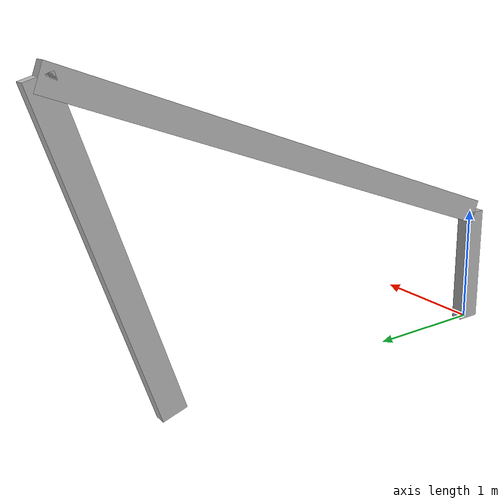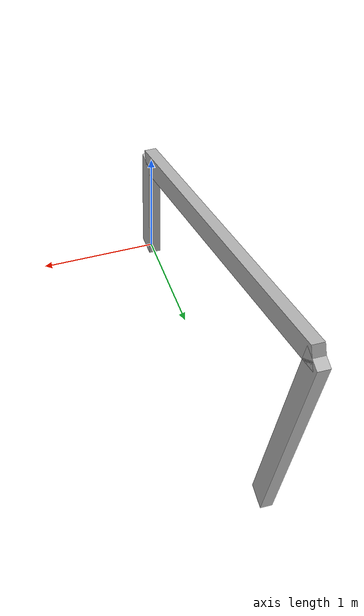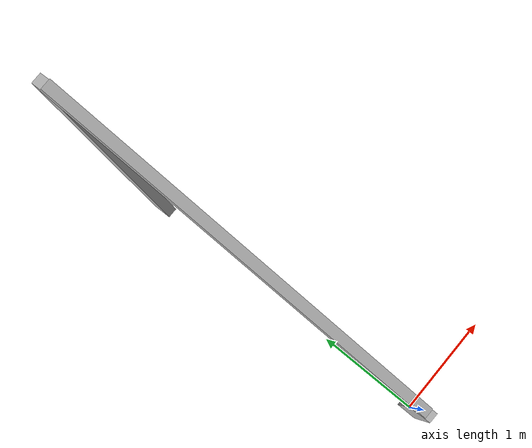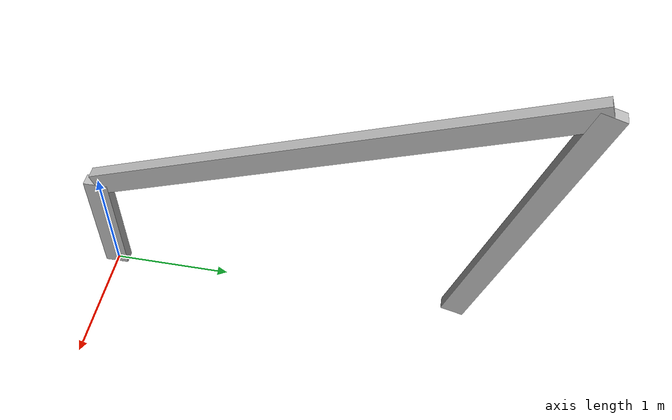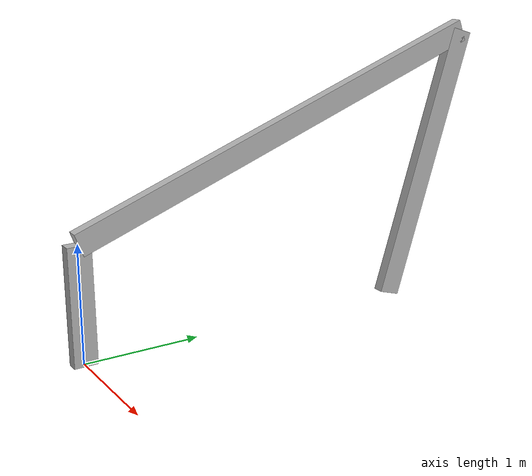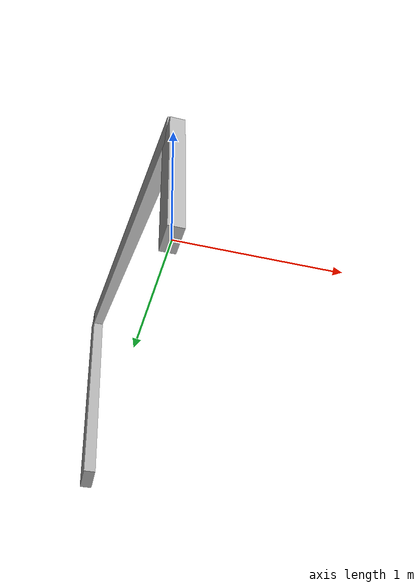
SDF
<sdf version='1.7'>
    <plugin name="gazebo_ros_state" filename="libgazebo_ros_state.so">
      <ros>
        <namespace>/demo</namespace>
        <argument>model_states:=model_states_demo</argument>
        <argument>link_states:=link_states_demo</argument>
      </ros>
      <alwaysOn>1</alwaysOn>
      <update_rate>100</update_rate>
    </plugin>

    <state_interface name="position">
      <param name="initial_value">1.0</param>
    </state_interface>

  <model name='four_bar_linkage'>
    <joint name='first_joint' type='revolute'>
      <pose relative_to='__model__'>0 0 0.0 0 0 0</pose>
      <parent>world</parent>
      <child>link1</child>
      <axis>
        <xyz>1 0 0</xyz>
        <limit>
          <upper>Inf</upper>
          <lower>-Inf</lower>
        </limit>
      </axis>
    </joint>

    <link name='link1'>
      <pose relative_to='first_joint'>0 0 0 1.578 0 0</pose>
      <inertial>
        <pose>0 0.5 0 0 0 0</pose>
        <mass>1</mass>
        <inertia>
          <ixx>0.0833333</ixx>
          <ixy>0</ixy>
          <ixz>0</ixz>
          <iyy>0</iyy>
          <iyz>0</iyz>
          <izz>0</izz>
        </inertia>
      </inertial>
      <visual name='base_visual'>
        <pose>0 0.5 0 0 0 0</pose>
        <geometry>
          <box>
            <size>0.1 1 0.2</size>
          </box>
        </geometry>
      </visual>
    </link>

    <joint name='second_joint' type='revolute'>
      <pose relative_to='link1'>0 1 0 -1.578 0 0</pose>
      <parent>link1</parent>
      <child>link2</child>
      <axis>
        <xyz>1 0 0</xyz>
        <limit>
          <upper>Inf</upper>
          <lower>-Inf</lower>
        </limit>
      </axis>
    </joint>

    <link name='link2'>
      <pose relative_to='second_joint'>0 0 0 0.3533 0 0</pose>
      <inertial>
        <pose>0 2.0 0 0 0 0</pose>
        <mass>4</mass>
        <inertia>
          <ixx>5.33333</ixx>
          <ixy>0</ixy>
          <ixz>0</ixz>
          <iyy>0</iyy>
          <iyz>0</iyz>
          <izz>0</izz>
        </inertia>
      </inertial>
      <visual name='base_visual'>
        <pose>0 2.0 0 0 0 0</pose>
        <geometry>
          <box>
            <size>0.1 4 0.2</size>
          </box>
        </geometry>
      </visual>
    </link>

    <joint name='third_joint' type='revolute'>
      <pose relative_to='link2'>0 4 0 -0.3533 0 0</pose>
      <parent>link2</parent>
      <child>link3</child>
      <axis>
        <xyz>1 0 0</xyz>
        <limit>
          <upper>Inf</upper>
          <lower>-Inf</lower>
        </limit>
      </axis>
    </joint>

    <link name='link3'>
      <pose relative_to='third_joint'>0 0 0 -1.8767 0 0</pose>
      <inertial>
        <pose>0 1.25 0 0 0 0</pose>
        <mass>2.5</mass>
        <inertia>
          <ixx>1.3021</ixx>
          <ixy>0</ixy>
          <ixz>0</ixz>
          <iyy>0</iyy>
          <iyz>0</iyz>
          <izz>0</izz>
        </inertia>
      </inertial>
      <visual name='base_visual'>
        <pose>0 1.25 0 0 0 0</pose>
        <geometry>
          <box>
            <size>0.1 2.5 0.2</size>
          </box>
        </geometry>
      </visual>
    </link>

    <joint name='fourth_joint' type='revolute'>
      <pose relative_to='__model__'>0 3.0 0 0 0 0</pose>
      <parent>world</parent>
      <child>link3</child>
      <axis>
        <xyz>1 0 0</xyz>
        <limit>
          <upper>Inf</upper>
          <lower>-Inf</lower>
        </limit>
      </axis>
    </joint>
    <plugin name='joint_state_publisher' filename='libgazebo_ros_joint_state_publisher.so'>
      <joint_name>first_joint</joint_name>
      <joint_name>second_joint</joint_name>
      <joint_name>third_joint</joint_name>
      <joint_name>fourth_joint</joint_name>
      <updateRate>100.0</updateRate>
      <alwaysOn>1</alwaysOn>
      <ros>
        <namespace>/joints</namespace>
        <remapping>joint_states:=joint_states_demo</remapping>
      </ros>
    </plugin>
  </model>

</sdf>
